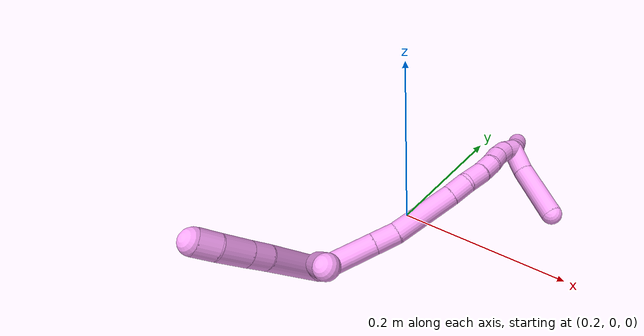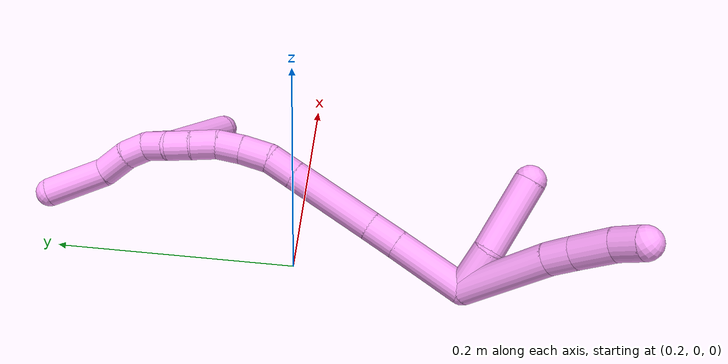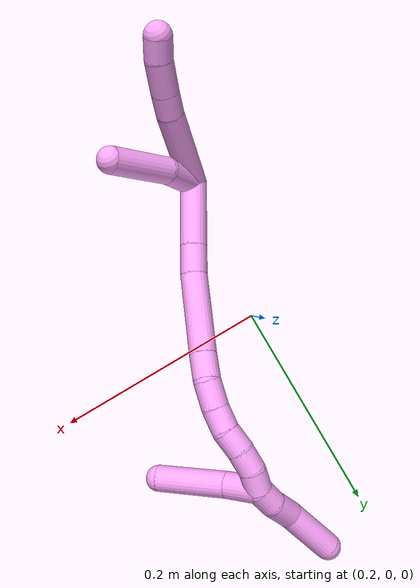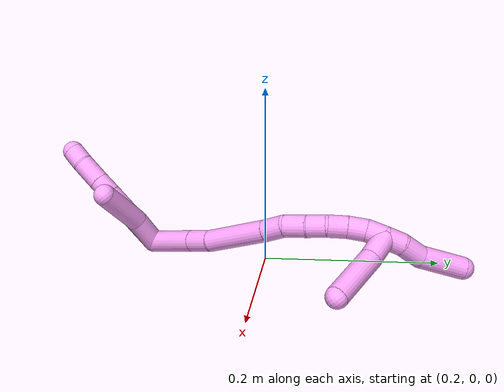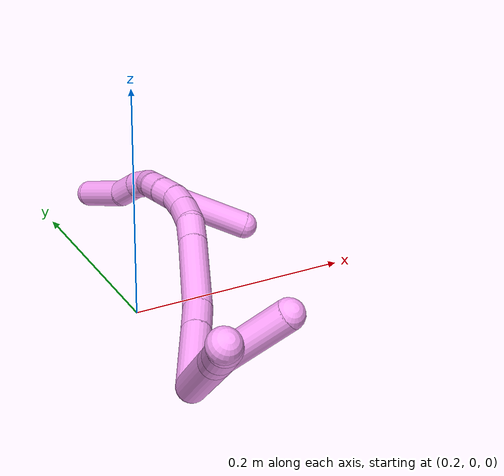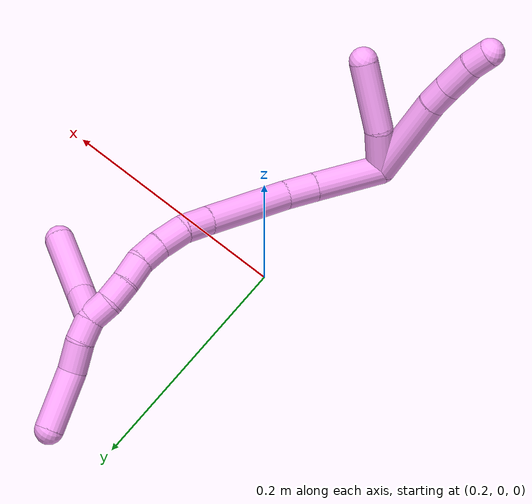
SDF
<sdf version="1.7">
 <world name="default">
  <model name="4">
   <static>0</static>
   <link name="4">
    <collision name="collision-cylinder-e_1_2_8">
     <pose>0.000773 -0.005225 0.038635 0.134422 0.019819 0.001334</pose>
     <geometry><cylinder><radius>0.0125</radius><length>0.077988</length></cylinder></geometry>
     <surface>
      <friction><ode><mu>1.16</mu><mu2>1.16</mu2><slip1>0</slip1><slip2>0</slip2></ode></friction>
      <contact><ode><kp>1e+06</kp><kd>1</kd><max_vel>0</max_vel><min_depth>0.001</min_depth></ode></contact>
     </surface>
    </collision>
    <visual name="visual-cylinder-e_1_2_8">
     <pose>0.000773 -0.005225 0.038635 0.134422 0.019819 0.001334</pose>
     <geometry><cylinder><radius>0.0125</radius><length>0.077988</length></cylinder></geometry>
     <material><ambient>1 0.65098 0.996078 1</ambient></material>
    </visual>
    <collision name="collision-cylinder-e_2_8_9">
     <pose>0.001463 -0.012982 0.087619 0.239927 -0.007733 -0.000932</pose>
     <geometry><cylinder><radius>0.0125</radius><length>0.02131</length></cylinder></geometry>
     <surface>
      <friction><ode><mu>1.16</mu><mu2>1.16</mu2><slip1>0</slip1><slip2>0</slip2></ode></friction>
      <contact><ode><kp>1e+06</kp><kd>1</kd><max_vel>0</max_vel><min_depth>0.001</min_depth></ode></contact>
     </surface>
    </collision>
    <visual name="visual-cylinder-e_2_8_9">
     <pose>0.001463 -0.012982 0.087619 0.239927 -0.007733 -0.000932</pose>
     <geometry><cylinder><radius>0.0125</radius><length>0.02131</length></cylinder></geometry>
     <material><ambient>1 0.65098 0.996078 1</ambient></material>
    </visual>
    <collision name="collision-cylinder-e_3_9_10">
     <pose>0.000857 -0.019379 0.112558 0.259013 -0.034697 -0.004519</pose>
     <geometry><cylinder><radius>0.0125</radius><length>0.030205</length></cylinder></geometry>
     <surface>
      <friction><ode><mu>1.16</mu><mu2>1.16</mu2><slip1>0</slip1><slip2>0</slip2></ode></friction>
      <contact><ode><kp>1e+06</kp><kd>1</kd><max_vel>0</max_vel><min_depth>0.001</min_depth></ode></contact>
     </surface>
    </collision>
    <visual name="visual-cylinder-e_3_9_10">
     <pose>0.000857 -0.019379 0.112558 0.259013 -0.034697 -0.004519</pose>
     <geometry><cylinder><radius>0.0125</radius><length>0.030205</length></cylinder></geometry>
     <material><ambient>1 0.65098 0.996078 1</ambient></material>
    </visual>
    <collision name="collision-cylinder-e_4_10_6">
     <pose>-0.000997 -0.027177 0.136519 0.397249 -0.130116 -0.026225</pose>
     <geometry><cylinder><radius>0.0125</radius><length>0.020497</length></cylinder></geometry>
     <surface>
      <friction><ode><mu>1.16</mu><mu2>1.16</mu2><slip1>0</slip1><slip2>0</slip2></ode></friction>
      <contact><ode><kp>1e+06</kp><kd>1</kd><max_vel>0</max_vel><min_depth>0.001</min_depth></ode></contact>
     </surface>
    </collision>
    <visual name="visual-cylinder-e_4_10_6">
     <pose>-0.000997 -0.027177 0.136519 0.397249 -0.130116 -0.026225</pose>
     <geometry><cylinder><radius>0.0125</radius><length>0.020497</length></cylinder></geometry>
     <material><ambient>1 0.65098 0.996078 1</ambient></material>
    </visual>
    <collision name="collision-cylinder-e_1_2_11">
     <pose>0.003381 0.008689 0.016809 -0.477108 0.176822 -0.043106</pose>
     <geometry><cylinder><radius>0.0125</radius><length>0.038443</length></cylinder></geometry>
     <surface>
      <friction><ode><mu>1.16</mu><mu2>1.16</mu2><slip1>0</slip1><slip2>0</slip2></ode></friction>
      <contact><ode><kp>1e+06</kp><kd>1</kd><max_vel>0</max_vel><min_depth>0.001</min_depth></ode></contact>
     </surface>
    </collision>
    <visual name="visual-cylinder-e_1_2_11">
     <pose>0.003381 0.008689 0.016809 -0.477108 0.176822 -0.043106</pose>
     <geometry><cylinder><radius>0.0125</radius><length>0.038443</length></cylinder></geometry>
     <material><ambient>1 0.65098 0.996078 1</ambient></material>
    </visual>
    <collision name="collision-cylinder-e_2_11_5">
     <pose>0.018202 0.034157 0.056746 -0.627605 0.380808 -0.124935</pose>
     <geometry><cylinder><radius>0.0125</radius><length>0.061557</length></cylinder></geometry>
     <surface>
      <friction><ode><mu>1.16</mu><mu2>1.16</mu2><slip1>0</slip1><slip2>0</slip2></ode></friction>
      <contact><ode><kp>1e+06</kp><kd>1</kd><max_vel>0</max_vel><min_depth>0.001</min_depth></ode></contact>
     </surface>
    </collision>
    <visual name="visual-cylinder-e_2_11_5">
     <pose>0.018202 0.034157 0.056746 -0.627605 0.380808 -0.124935</pose>
     <geometry><cylinder><radius>0.0125</radius><length>0.061557</length></cylinder></geometry>
     <material><ambient>1 0.65098 0.996078 1</ambient></material>
    </visual>
    <collision name="collision-cylinder-e_1_2_12">
     <pose>-0.009079 0.026915 -0.012323 -2.00015 -0.297591 0.458782</pose>
     <geometry><cylinder><radius>0.0125</radius><length>0.061926</length></cylinder></geometry>
     <surface>
      <friction><ode><mu>1.16</mu><mu2>1.16</mu2><slip1>0</slip1><slip2>0</slip2></ode></friction>
      <contact><ode><kp>1e+06</kp><kd>1</kd><max_vel>0</max_vel><min_depth>0.001</min_depth></ode></contact>
     </surface>
    </collision>
    <visual name="visual-cylinder-e_1_2_12">
     <pose>-0.009079 0.026915 -0.012323 -2.00015 -0.297591 0.458782</pose>
     <geometry><cylinder><radius>0.0125</radius><length>0.061926</length></cylinder></geometry>
     <material><ambient>1 0.65098 0.996078 1</ambient></material>
    </visual>
    <collision name="collision-cylinder-e_2_12_13">
     <pose>-0.022166 0.065585 -0.030184 -2.01107 -0.299239 0.466657</pose>
     <geometry><cylinder><radius>0.0125</radius><length>0.027197</length></cylinder></geometry>
     <surface>
      <friction><ode><mu>1.16</mu><mu2>1.16</mu2><slip1>0</slip1><slip2>0</slip2></ode></friction>
      <contact><ode><kp>1e+06</kp><kd>1</kd><max_vel>0</max_vel><min_depth>0.001</min_depth></ode></contact>
     </surface>
    </collision>
    <visual name="visual-cylinder-e_2_12_13">
     <pose>-0.022166 0.065585 -0.030184 -2.01107 -0.299239 0.466657</pose>
     <geometry><cylinder><radius>0.0125</radius><length>0.027197</length></cylinder></geometry>
     <material><ambient>1 0.65098 0.996078 1</ambient></material>
    </visual>
    <collision name="collision-cylinder-e_3_13_14">
     <pose>-0.042379 0.109287 -0.047809 -1.93251 -0.442951 0.630167</pose>
     <geometry><cylinder><radius>0.0125</radius><length>0.075612</length></cylinder></geometry>
     <surface>
      <friction><ode><mu>1.16</mu><mu2>1.16</mu2><slip1>0</slip1><slip2>0</slip2></ode></friction>
      <contact><ode><kp>1e+06</kp><kd>1</kd><max_vel>0</max_vel><min_depth>0.001</min_depth></ode></contact>
     </surface>
    </collision>
    <visual name="visual-cylinder-e_3_13_14">
     <pose>-0.042379 0.109287 -0.047809 -1.93251 -0.442951 0.630167</pose>
     <geometry><cylinder><radius>0.0125</radius><length>0.075612</length></cylinder></geometry>
     <material><ambient>1 0.65098 0.996078 1</ambient></material>
    </visual>
    <collision name="collision-cylinder-e_4_14_15">
     <pose>-0.064401 0.151478 -0.063378 -1.89843 -0.493379 0.676118</pose>
     <geometry><cylinder><radius>0.0125</radius><length>0.024568</length></cylinder></geometry>
     <surface>
      <friction><ode><mu>1.16</mu><mu2>1.16</mu2><slip1>0</slip1><slip2>0</slip2></ode></friction>
      <contact><ode><kp>1e+06</kp><kd>1</kd><max_vel>0</max_vel><min_depth>0.001</min_depth></ode></contact>
     </surface>
    </collision>
    <visual name="visual-cylinder-e_4_14_15">
     <pose>-0.064401 0.151478 -0.063378 -1.89843 -0.493379 0.676118</pose>
     <geometry><cylinder><radius>0.0125</radius><length>0.024568</length></cylinder></geometry>
     <material><ambient>1 0.65098 0.996078 1</ambient></material>
    </visual>
    <collision name="collision-cylinder-e_5_15_16">
     <pose>-0.076387 0.17042 -0.073797 -2.24402 -0.506177 0.985736</pose>
     <geometry><cylinder><radius>0.0125</radius><length>0.025444</length></cylinder></geometry>
     <surface>
      <friction><ode><mu>1.16</mu><mu2>1.16</mu2><slip1>0</slip1><slip2>0</slip2></ode></friction>
      <contact><ode><kp>1e+06</kp><kd>1</kd><max_vel>0</max_vel><min_depth>0.001</min_depth></ode></contact>
     </surface>
    </collision>
    <visual name="visual-cylinder-e_5_15_16">
     <pose>-0.076387 0.17042 -0.073797 -2.24402 -0.506177 0.985736</pose>
     <geometry><cylinder><radius>0.0125</radius><length>0.025444</length></cylinder></geometry>
     <material><ambient>1 0.65098 0.996078 1</ambient></material>
    </visual>
    <collision name="collision-cylinder-e_6_16_17">
     <pose>-0.088757 0.185523 -0.086775 -2.32691 -0.613796 1.26699</pose>
     <geometry><cylinder><radius>0.0125</radius><length>0.021537</length></cylinder></geometry>
     <surface>
      <friction><ode><mu>1.16</mu><mu2>1.16</mu2><slip1>0</slip1><slip2>0</slip2></ode></friction>
      <contact><ode><kp>1e+06</kp><kd>1</kd><max_vel>0</max_vel><min_depth>0.001</min_depth></ode></contact>
     </surface>
    </collision>
    <visual name="visual-cylinder-e_6_16_17">
     <pose>-0.088757 0.185523 -0.086775 -2.32691 -0.613796 1.26699</pose>
     <geometry><cylinder><radius>0.0125</radius><length>0.021537</length></cylinder></geometry>
     <material><ambient>1 0.65098 0.996078 1</ambient></material>
    </visual>
    <collision name="collision-cylinder-e_7_17_18">
     <pose>-0.102074 0.196043 -0.10003 -2.62326 -0.708285 1.89739</pose>
     <geometry><cylinder><radius>0.0125</radius><length>0.021874</length></cylinder></geometry>
     <surface>
      <friction><ode><mu>1.16</mu><mu2>1.16</mu2><slip1>0</slip1><slip2>0</slip2></ode></friction>
      <contact><ode><kp>1e+06</kp><kd>1</kd><max_vel>0</max_vel><min_depth>0.001</min_depth></ode></contact>
     </surface>
    </collision>
    <visual name="visual-cylinder-e_7_17_18">
     <pose>-0.102074 0.196043 -0.10003 -2.62326 -0.708285 1.89739</pose>
     <geometry><cylinder><radius>0.0125</radius><length>0.021874</length></cylinder></geometry>
     <material><ambient>1 0.65098 0.996078 1</ambient></material>
    </visual>
    <collision name="collision-cylinder-e_8_18_19">
     <pose>-0.114918 0.204615 -0.11498 -2.61885 -0.57056 1.66271</pose>
     <geometry><cylinder><radius>0.0125</radius><length>0.021214</length></cylinder></geometry>
     <surface>
      <friction><ode><mu>1.16</mu><mu2>1.16</mu2><slip1>0</slip1><slip2>0</slip2></ode></friction>
      <contact><ode><kp>1e+06</kp><kd>1</kd><max_vel>0</max_vel><min_depth>0.001</min_depth></ode></contact>
     </surface>
    </collision>
    <visual name="visual-cylinder-e_8_18_19">
     <pose>-0.114918 0.204615 -0.11498 -2.61885 -0.57056 1.66271</pose>
     <geometry><cylinder><radius>0.0125</radius><length>0.021214</length></cylinder></geometry>
     <material><ambient>1 0.65098 0.996078 1</ambient></material>
    </visual>
    <collision name="collision-cylinder-e_9_19_1">
     <pose>-0.123868 0.214188 -0.131071 -2.59223 -0.317627 1.03364</pose>
     <geometry><cylinder><radius>0.0125</radius><length>0.020628</length></cylinder></geometry>
     <surface>
      <friction><ode><mu>1.16</mu><mu2>1.16</mu2><slip1>0</slip1><slip2>0</slip2></ode></friction>
      <contact><ode><kp>1e+06</kp><kd>1</kd><max_vel>0</max_vel><min_depth>0.001</min_depth></ode></contact>
     </surface>
    </collision>
    <visual name="visual-cylinder-e_9_19_1">
     <pose>-0.123868 0.214188 -0.131071 -2.59223 -0.317627 1.03364</pose>
     <geometry><cylinder><radius>0.0125</radius><length>0.020628</length></cylinder></geometry>
     <material><ambient>1 0.65098 0.996078 1</ambient></material>
    </visual>
    <collision name="collision-cylinder-e_1_1_20">
     <pose>-0.111122 0.221072 -0.141576 -2.45314 1.39828 -2.33553</pose>
     <geometry><cylinder><radius>0.0125</radius><length>0.032417</length></cylinder></geometry>
     <surface>
      <friction><ode><mu>1.16</mu><mu2>1.16</mu2><slip1>0</slip1><slip2>0</slip2></ode></friction>
      <contact><ode><kp>1e+06</kp><kd>1</kd><max_vel>0</max_vel><min_depth>0.001</min_depth></ode></contact>
     </surface>
    </collision>
    <visual name="visual-cylinder-e_1_1_20">
     <pose>-0.111122 0.221072 -0.141576 -2.45314 1.39828 -2.33553</pose>
     <geometry><cylinder><radius>0.0125</radius><length>0.032417</length></cylinder></geometry>
     <material><ambient>1 0.65098 0.996078 1</ambient></material>
    </visual>
    <collision name="collision-cylinder-e_2_20_4">
     <pose>-0.06223 0.230441 -0.143454 -1.53519 1.34374 -1.30919</pose>
     <geometry><cylinder><radius>0.0125</radius><length>0.067583</length></cylinder></geometry>
     <surface>
      <friction><ode><mu>1.16</mu><mu2>1.16</mu2><slip1>0</slip1><slip2>0</slip2></ode></friction>
      <contact><ode><kp>1e+06</kp><kd>1</kd><max_vel>0</max_vel><min_depth>0.001</min_depth></ode></contact>
     </surface>
    </collision>
    <visual name="visual-cylinder-e_2_20_4">
     <pose>-0.06223 0.230441 -0.143454 -1.53519 1.34374 -1.30919</pose>
     <geometry><cylinder><radius>0.0125</radius><length>0.067583</length></cylinder></geometry>
     <material><ambient>1 0.65098 0.996078 1</ambient></material>
    </visual>
    <collision name="collision-cylinder-e_1_1_21">
     <pose>-0.132139 0.220481 -0.148431 -3.01157 -0.507503 2.64968</pose>
     <geometry><cylinder><radius>0.0125</radius><length>0.020779</length></cylinder></geometry>
     <surface>
      <friction><ode><mu>1.16</mu><mu2>1.16</mu2><slip1>0</slip1><slip2>0</slip2></ode></friction>
      <contact><ode><kp>1e+06</kp><kd>1</kd><max_vel>0</max_vel><min_depth>0.001</min_depth></ode></contact>
     </surface>
    </collision>
    <visual name="visual-cylinder-e_1_1_21">
     <pose>-0.132139 0.220481 -0.148431 -3.01157 -0.507503 2.64968</pose>
     <geometry><cylinder><radius>0.0125</radius><length>0.020779</length></cylinder></geometry>
     <material><ambient>1 0.65098 0.996078 1</ambient></material>
    </visual>
    <collision name="collision-cylinder-e_2_21_22">
     <pose>-0.142252 0.220381 -0.169651 3.03741 -0.391013 -2.62671</pose>
     <geometry><cylinder><radius>0.0125</radius><length>0.026573</length></cylinder></geometry>
     <surface>
      <friction><ode><mu>1.16</mu><mu2>1.16</mu2><slip1>0</slip1><slip2>0</slip2></ode></friction>
      <contact><ode><kp>1e+06</kp><kd>1</kd><max_vel>0</max_vel><min_depth>0.001</min_depth></ode></contact>
     </surface>
    </collision>
    <visual name="visual-cylinder-e_2_21_22">
     <pose>-0.142252 0.220381 -0.169651 3.03741 -0.391013 -2.62671</pose>
     <geometry><cylinder><radius>0.0125</radius><length>0.026573</length></cylinder></geometry>
     <material><ambient>1 0.65098 0.996078 1</ambient></material>
    </visual>
    <collision name="collision-cylinder-e_3_22_3">
     <pose>-0.16295 0.221772 -0.202878 -3.01525 -0.635912 2.76185</pose>
     <geometry><cylinder><radius>0.0125</radius><length>0.052649</length></cylinder></geometry>
     <surface>
      <friction><ode><mu>1.16</mu><mu2>1.16</mu2><slip1>0</slip1><slip2>0</slip2></ode></friction>
      <contact><ode><kp>1e+06</kp><kd>1</kd><max_vel>0</max_vel><min_depth>0.001</min_depth></ode></contact>
     </surface>
    </collision>
    <visual name="visual-cylinder-e_3_22_3">
     <pose>-0.16295 0.221772 -0.202878 -3.01525 -0.635912 2.76185</pose>
     <geometry><cylinder><radius>0.0125</radius><length>0.052649</length></cylinder></geometry>
     <material><ambient>1 0.65098 0.996078 1</ambient></material>
    </visual>
    <collision name="collision-sphere-3">
     <pose>-0.178584 0.224441 -0.223888 0 -0 0</pose>
     <geometry><sphere><radius>0.0125</radius></sphere></geometry>
     <surface>
      <friction><ode><mu>1.16</mu><mu2>1.16</mu2><slip1>0</slip1><slip2>0</slip2></ode></friction>
      <contact><ode><kp>1e+06</kp><kd>1</kd><max_vel>0</max_vel><min_depth>0.001</min_depth></ode></contact>
     </surface>
    </collision>
    <visual name="visual-sphere-3">
     <pose>-0.178584 0.224441 -0.223888 0 -0 0</pose>
     <geometry><sphere><radius>0.0125</radius></sphere></geometry>
     <material><ambient>1 0.65098 0.996078 1</ambient></material>
    </visual>
    <collision name="collision-sphere-22">
     <pose>-0.147316 0.219104 -0.181868 0 -0 0</pose>
     <geometry><sphere><radius>0.0125</radius></sphere></geometry>
     <surface>
      <friction><ode><mu>1.16</mu><mu2>1.16</mu2><slip1>0</slip1><slip2>0</slip2></ode></friction>
      <contact><ode><kp>1e+06</kp><kd>1</kd><max_vel>0</max_vel><min_depth>0.001</min_depth></ode></contact>
     </surface>
    </collision>
    <visual name="visual-sphere-22">
     <pose>-0.147316 0.219104 -0.181868 0 -0 0</pose>
     <geometry><sphere><radius>0.0125</radius></sphere></geometry>
     <material><ambient>1 0.65098 0.996078 1</ambient></material>
    </visual>
    <collision name="collision-sphere-21">
     <pose>-0.137188 0.221659 -0.157434 0 -0 0</pose>
     <geometry><sphere><radius>0.0125</radius></sphere></geometry>
     <surface>
      <friction><ode><mu>1.16</mu><mu2>1.16</mu2><slip1>0</slip1><slip2>0</slip2></ode></friction>
      <contact><ode><kp>1e+06</kp><kd>1</kd><max_vel>0</max_vel><min_depth>0.001</min_depth></ode></contact>
     </surface>
    </collision>
    <visual name="visual-sphere-21">
     <pose>-0.137188 0.221659 -0.157434 0 -0 0</pose>
     <geometry><sphere><radius>0.0125</radius></sphere></geometry>
     <material><ambient>1 0.65098 0.996078 1</ambient></material>
    </visual>
    <collision name="collision-sphere-4">
     <pose>-0.029305 0.238043 -0.143183 0 -0 0</pose>
     <geometry><sphere><radius>0.0125</radius></sphere></geometry>
     <surface>
      <friction><ode><mu>1.16</mu><mu2>1.16</mu2><slip1>0</slip1><slip2>0</slip2></ode></friction>
      <contact><ode><kp>1e+06</kp><kd>1</kd><max_vel>0</max_vel><min_depth>0.001</min_depth></ode></contact>
     </surface>
    </collision>
    <visual name="visual-sphere-4">
     <pose>-0.029305 0.238043 -0.143183 0 -0 0</pose>
     <geometry><sphere><radius>0.0125</radius></sphere></geometry>
     <material><ambient>1 0.65098 0.996078 1</ambient></material>
    </visual>
    <collision name="collision-sphere-20">
     <pose>-0.095154 0.222839 -0.143725 0 -0 0</pose>
     <geometry><sphere><radius>0.0125</radius></sphere></geometry>
     <surface>
      <friction><ode><mu>1.16</mu><mu2>1.16</mu2><slip1>0</slip1><slip2>0</slip2></ode></friction>
      <contact><ode><kp>1e+06</kp><kd>1</kd><max_vel>0</max_vel><min_depth>0.001</min_depth></ode></contact>
     </surface>
    </collision>
    <visual name="visual-sphere-20">
     <pose>-0.095154 0.222839 -0.143725 0 -0 0</pose>
     <geometry><sphere><radius>0.0125</radius></sphere></geometry>
     <material><ambient>1 0.65098 0.996078 1</ambient></material>
    </visual>
    <collision name="collision-sphere-11">
     <pose>0.006762 0.017378 0.033618 0 -0 0</pose>
     <geometry><sphere><radius>0.0125</radius></sphere></geometry>
     <surface>
      <friction><ode><mu>1.16</mu><mu2>1.16</mu2><slip1>0</slip1><slip2>0</slip2></ode></friction>
      <contact><ode><kp>1e+06</kp><kd>1</kd><max_vel>0</max_vel><min_depth>0.001</min_depth></ode></contact>
     </surface>
    </collision>
    <visual name="visual-sphere-11">
     <pose>0.006762 0.017378 0.033618 0 -0 0</pose>
     <geometry><sphere><radius>0.0125</radius></sphere></geometry>
     <material><ambient>1 0.65098 0.996078 1</ambient></material>
    </visual>
    <collision name="collision-sphere-6">
     <pose>-0.002327 -0.031108 0.145889 0 -0 0</pose>
     <geometry><sphere><radius>0.0125</radius></sphere></geometry>
     <surface>
      <friction><ode><mu>1.16</mu><mu2>1.16</mu2><slip1>0</slip1><slip2>0</slip2></ode></friction>
      <contact><ode><kp>1e+06</kp><kd>1</kd><max_vel>0</max_vel><min_depth>0.001</min_depth></ode></contact>
     </surface>
    </collision>
    <visual name="visual-sphere-6">
     <pose>-0.002327 -0.031108 0.145889 0 -0 0</pose>
     <geometry><sphere><radius>0.0125</radius></sphere></geometry>
     <material><ambient>1 0.65098 0.996078 1</ambient></material>
    </visual>
    <collision name="collision-sphere-10">
     <pose>0.000333 -0.023245 0.127148 0 -0 0</pose>
     <geometry><sphere><radius>0.0125</radius></sphere></geometry>
     <surface>
      <friction><ode><mu>1.16</mu><mu2>1.16</mu2><slip1>0</slip1><slip2>0</slip2></ode></friction>
      <contact><ode><kp>1e+06</kp><kd>1</kd><max_vel>0</max_vel><min_depth>0.001</min_depth></ode></contact>
     </surface>
    </collision>
    <visual name="visual-sphere-10">
     <pose>0.000333 -0.023245 0.127148 0 -0 0</pose>
     <geometry><sphere><radius>0.0125</radius></sphere></geometry>
     <material><ambient>1 0.65098 0.996078 1</ambient></material>
    </visual>
    <collision name="collision-sphere-9">
     <pose>0.001381 -0.015513 0.097968 0 -0 0</pose>
     <geometry><sphere><radius>0.0125</radius></sphere></geometry>
     <surface>
      <friction><ode><mu>1.16</mu><mu2>1.16</mu2><slip1>0</slip1><slip2>0</slip2></ode></friction>
      <contact><ode><kp>1e+06</kp><kd>1</kd><max_vel>0</max_vel><min_depth>0.001</min_depth></ode></contact>
     </surface>
    </collision>
    <visual name="visual-sphere-9">
     <pose>0.001381 -0.015513 0.097968 0 -0 0</pose>
     <geometry><sphere><radius>0.0125</radius></sphere></geometry>
     <material><ambient>1 0.65098 0.996078 1</ambient></material>
    </visual>
    <collision name="collision-sphere-2">
     <geometry><sphere><radius>0.0125</radius></sphere></geometry>
     <surface>
      <friction><ode><mu>1.16</mu><mu2>1.16</mu2><slip1>0</slip1><slip2>0</slip2></ode></friction>
      <contact><ode><kp>1e+06</kp><kd>1</kd><max_vel>0</max_vel><min_depth>0.001</min_depth></ode></contact>
     </surface>
    </collision>
    <visual name="visual-sphere-2">
     <geometry><sphere><radius>0.0125</radius></sphere></geometry>
     <material><ambient>1 0.65098 0.996078 1</ambient></material>
    </visual>
    <collision name="collision-sphere-19">
     <pose>-0.120647 0.209072 -0.122715 0 -0 0</pose>
     <geometry><sphere><radius>0.0125</radius></sphere></geometry>
     <surface>
      <friction><ode><mu>1.16</mu><mu2>1.16</mu2><slip1>0</slip1><slip2>0</slip2></ode></friction>
      <contact><ode><kp>1e+06</kp><kd>1</kd><max_vel>0</max_vel><min_depth>0.001</min_depth></ode></contact>
     </surface>
    </collision>
    <visual name="visual-sphere-19">
     <pose>-0.120647 0.209072 -0.122715 0 -0 0</pose>
     <geometry><sphere><radius>0.0125</radius></sphere></geometry>
     <material><ambient>1 0.65098 0.996078 1</ambient></material>
    </visual>
    <collision name="collision-sphere-8">
     <pose>0.001546 -0.01045 0.077269 0 -0 0</pose>
     <geometry><sphere><radius>0.0125</radius></sphere></geometry>
     <surface>
      <friction><ode><mu>1.16</mu><mu2>1.16</mu2><slip1>0</slip1><slip2>0</slip2></ode></friction>
      <contact><ode><kp>1e+06</kp><kd>1</kd><max_vel>0</max_vel><min_depth>0.001</min_depth></ode></contact>
     </surface>
    </collision>
    <visual name="visual-sphere-8">
     <pose>0.001546 -0.01045 0.077269 0 -0 0</pose>
     <geometry><sphere><radius>0.0125</radius></sphere></geometry>
     <material><ambient>1 0.65098 0.996078 1</ambient></material>
    </visual>
    <collision name="collision-sphere-5">
     <pose>0.029641 0.050936 0.079875 0 -0 0</pose>
     <geometry><sphere><radius>0.0125</radius></sphere></geometry>
     <surface>
      <friction><ode><mu>1.16</mu><mu2>1.16</mu2><slip1>0</slip1><slip2>0</slip2></ode></friction>
      <contact><ode><kp>1e+06</kp><kd>1</kd><max_vel>0</max_vel><min_depth>0.001</min_depth></ode></contact>
     </surface>
    </collision>
    <visual name="visual-sphere-5">
     <pose>0.029641 0.050936 0.079875 0 -0 0</pose>
     <geometry><sphere><radius>0.0125</radius></sphere></geometry>
     <material><ambient>1 0.65098 0.996078 1</ambient></material>
    </visual>
    <collision name="collision-sphere-12">
     <pose>-0.018158 0.05383 -0.024646 0 -0 0</pose>
     <geometry><sphere><radius>0.0125</radius></sphere></geometry>
     <surface>
      <friction><ode><mu>1.16</mu><mu2>1.16</mu2><slip1>0</slip1><slip2>0</slip2></ode></friction>
      <contact><ode><kp>1e+06</kp><kd>1</kd><max_vel>0</max_vel><min_depth>0.001</min_depth></ode></contact>
     </surface>
    </collision>
    <visual name="visual-sphere-12">
     <pose>-0.018158 0.05383 -0.024646 0 -0 0</pose>
     <geometry><sphere><radius>0.0125</radius></sphere></geometry>
     <material><ambient>1 0.65098 0.996078 1</ambient></material>
    </visual>
    <collision name="collision-sphere-13">
     <pose>-0.026175 0.07734 -0.035722 0 -0 0</pose>
     <geometry><sphere><radius>0.0125</radius></sphere></geometry>
     <surface>
      <friction><ode><mu>1.16</mu><mu2>1.16</mu2><slip1>0</slip1><slip2>0</slip2></ode></friction>
      <contact><ode><kp>1e+06</kp><kd>1</kd><max_vel>0</max_vel><min_depth>0.001</min_depth></ode></contact>
     </surface>
    </collision>
    <visual name="visual-sphere-13">
     <pose>-0.026175 0.07734 -0.035722 0 -0 0</pose>
     <geometry><sphere><radius>0.0125</radius></sphere></geometry>
     <material><ambient>1 0.65098 0.996078 1</ambient></material>
    </visual>
    <collision name="collision-sphere-14">
     <pose>-0.058583 0.141234 -0.059897 0 -0 0</pose>
     <geometry><sphere><radius>0.0125</radius></sphere></geometry>
     <surface>
      <friction><ode><mu>1.16</mu><mu2>1.16</mu2><slip1>0</slip1><slip2>0</slip2></ode></friction>
      <contact><ode><kp>1e+06</kp><kd>1</kd><max_vel>0</max_vel><min_depth>0.001</min_depth></ode></contact>
     </surface>
    </collision>
    <visual name="visual-sphere-14">
     <pose>-0.058583 0.141234 -0.059897 0 -0 0</pose>
     <geometry><sphere><radius>0.0125</radius></sphere></geometry>
     <material><ambient>1 0.65098 0.996078 1</ambient></material>
    </visual>
    <collision name="collision-sphere-15">
     <pose>-0.070219 0.161721 -0.06686 0 -0 0</pose>
     <geometry><sphere><radius>0.0125</radius></sphere></geometry>
     <surface>
      <friction><ode><mu>1.16</mu><mu2>1.16</mu2><slip1>0</slip1><slip2>0</slip2></ode></friction>
      <contact><ode><kp>1e+06</kp><kd>1</kd><max_vel>0</max_vel><min_depth>0.001</min_depth></ode></contact>
     </surface>
    </collision>
    <visual name="visual-sphere-15">
     <pose>-0.070219 0.161721 -0.06686 0 -0 0</pose>
     <geometry><sphere><radius>0.0125</radius></sphere></geometry>
     <material><ambient>1 0.65098 0.996078 1</ambient></material>
    </visual>
    <collision name="collision-sphere-16">
     <pose>-0.082555 0.179119 -0.080735 0 -0 0</pose>
     <geometry><sphere><radius>0.0125</radius></sphere></geometry>
     <surface>
      <friction><ode><mu>1.16</mu><mu2>1.16</mu2><slip1>0</slip1><slip2>0</slip2></ode></friction>
      <contact><ode><kp>1e+06</kp><kd>1</kd><max_vel>0</max_vel><min_depth>0.001</min_depth></ode></contact>
     </surface>
    </collision>
    <visual name="visual-sphere-16">
     <pose>-0.082555 0.179119 -0.080735 0 -0 0</pose>
     <geometry><sphere><radius>0.0125</radius></sphere></geometry>
     <material><ambient>1 0.65098 0.996078 1</ambient></material>
    </visual>
    <collision name="collision-sphere-17">
     <pose>-0.09496 0.191928 -0.092814 0 -0 0</pose>
     <geometry><sphere><radius>0.0125</radius></sphere></geometry>
     <surface>
      <friction><ode><mu>1.16</mu><mu2>1.16</mu2><slip1>0</slip1><slip2>0</slip2></ode></friction>
      <contact><ode><kp>1e+06</kp><kd>1</kd><max_vel>0</max_vel><min_depth>0.001</min_depth></ode></contact>
     </surface>
    </collision>
    <visual name="visual-sphere-17">
     <pose>-0.09496 0.191928 -0.092814 0 -0 0</pose>
     <geometry><sphere><radius>0.0125</radius></sphere></geometry>
     <material><ambient>1 0.65098 0.996078 1</ambient></material>
    </visual>
    <collision name="collision-sphere-18">
     <pose>-0.109189 0.200158 -0.107245 0 -0 0</pose>
     <geometry><sphere><radius>0.0125</radius></sphere></geometry>
     <surface>
      <friction><ode><mu>1.16</mu><mu2>1.16</mu2><slip1>0</slip1><slip2>0</slip2></ode></friction>
      <contact><ode><kp>1e+06</kp><kd>1</kd><max_vel>0</max_vel><min_depth>0.001</min_depth></ode></contact>
     </surface>
    </collision>
    <visual name="visual-sphere-18">
     <pose>-0.109189 0.200158 -0.107245 0 -0 0</pose>
     <geometry><sphere><radius>0.0125</radius></sphere></geometry>
     <material><ambient>1 0.65098 0.996078 1</ambient></material>
    </visual>
    <collision name="collision-sphere-1">
     <pose>-0.12709 0.219304 -0.139427 0 -0 0</pose>
     <geometry><sphere><radius>0.0125</radius></sphere></geometry>
     <surface>
      <friction><ode><mu>1.16</mu><mu2>1.16</mu2><slip1>0</slip1><slip2>0</slip2></ode></friction>
      <contact><ode><kp>1e+06</kp><kd>1</kd><max_vel>0</max_vel><min_depth>0.001</min_depth></ode></contact>
     </surface>
    </collision>
    <visual name="visual-sphere-1">
     <pose>-0.12709 0.219304 -0.139427 0 -0 0</pose>
     <geometry><sphere><radius>0.0125</radius></sphere></geometry>
     <material><ambient>1 0.65098 0.996078 1</ambient></material>
    </visual>
    <inertial>
     <pose>-0.051464 0.109705 -0.046899 0 -0 0</pose>
     <mass>0.75</mass>
     <inertia>
      <ixx>0.000145</ixx>
      <ixy>0</ixy>
      <ixz>0</ixz>
      <iyy>0.000168</iyy>
      <iyz>0</iyz>
      <izz>-7.8e-05</izz>
     </inertia>
    </inertial>
   </link>
   <pose>0.183171 -0.135869 0.011495 0.4865 0.4806 -0.768387</pose>
  </model>
 </world>
</sdf>
